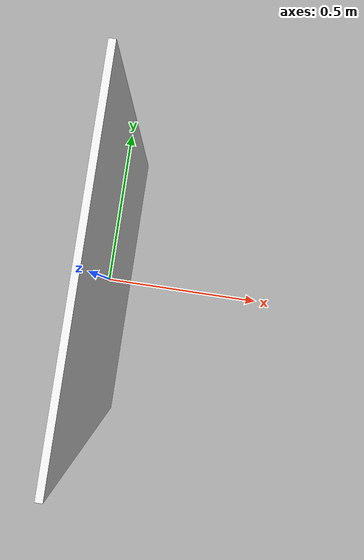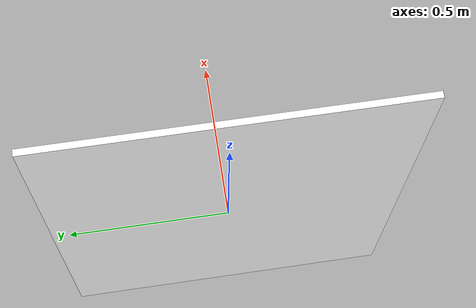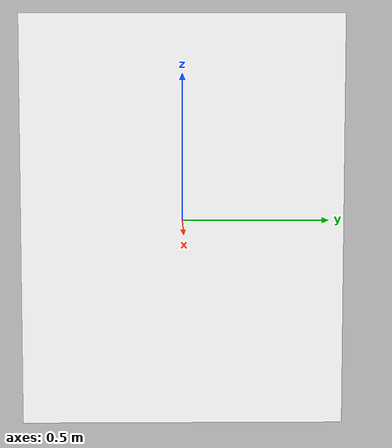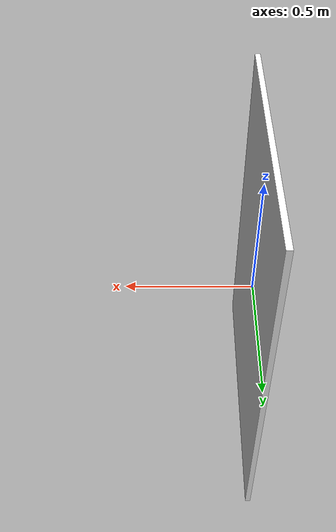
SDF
<?xml version="1.0"?>
<sdf version="1.4">
  <model name="window_curtains_small">
    <static>true</static>
    <link name="link">
      <visual name="visual">
        <pose>0 0 0 0 0 0</pose>
        <geometry><box><size>0.02 1.10 1.40</size></box></geometry>
        <material><pbr><metal><emissive_map>textures/window_curtains.png</emissive_map></metal></pbr><ambient>1 1 1 1</ambient><diffuse>1 1 1 1</diffuse><specular>1 1 1 1</specular><emissive>0.4 0.4 0.4 1</emissive></material>
      </visual>
    </link>
    <allow_auto_disable>1</allow_auto_disable>
  </model>
</sdf>
